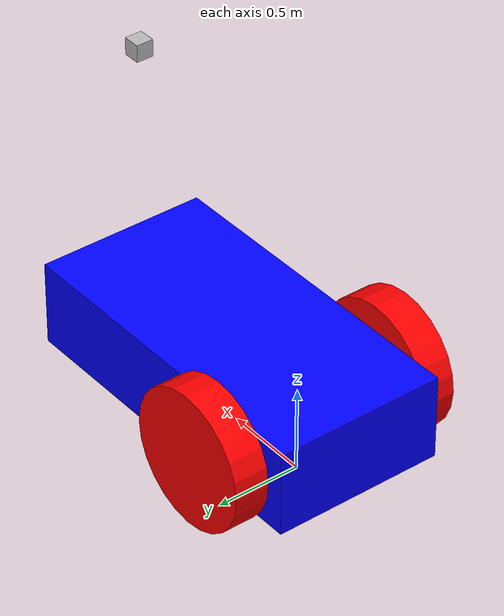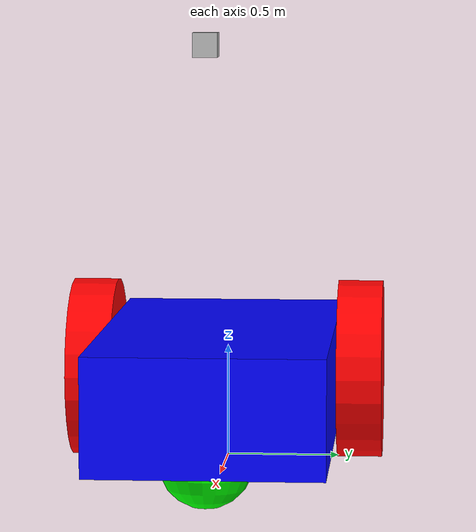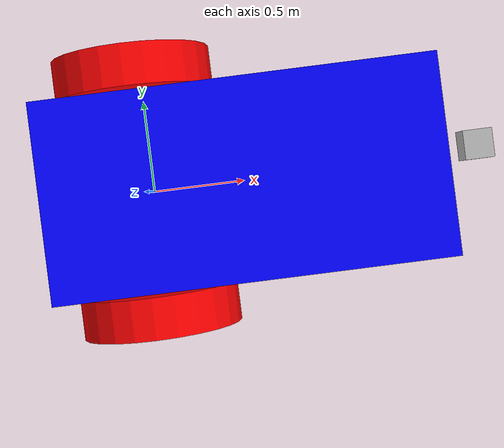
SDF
<?xml version="1.0" ?>
<sdf version="1.6">
  <model name="my_robot" canonical_link="chassis">

    <frame name="lidar_frame" attached_to="chassis">
      <pose>0 0 1 0 0 0</pose>
    </frame>

    <link name="chassis">
      <pose relative_to="__model__">0.5 0 0.4 0 0 0</pose>
      <inertial>
        <mass>1.14395</mass>
        <inertia>
          <ixx>0.126164</ixx>
          <ixy>0</ixy>
          <ixz>0</ixz>
          <iyy>0.416519</iyy>
          <iyz>0</iyz>
          <izz>0.481014</izz>
        </inertia>
      </inertial>
      <visual name="visual">
        <geometry>
          <box>
            <size>2.0 1.0 0.5</size>
          </box>
        </geometry>
        <material>
          <ambient>0.0 0.0 1.0 1</ambient>
          <diffuse>0.0 0.0 1.0 1</diffuse>
          <specular>0.0 0.0 1.0 1</specular>
        </material>
      </visual>
      <collision name="collision">
        <geometry>
          <box>
            <size>2.0 1.0 0.5</size>
          </box>
        </geometry>
      </collision>

    </link>
    <link name="cameras">
      <pose relative_to="chassis">0.8 0 1.5 0 0 0</pose>
      <inertial>
        <mass>0.1</mass>
        <inertia>
          <ixx>0.000166667</ixx>
          <ixy>0</ixy>
          <ixz>0</ixz>
          <iyy>0.000166667</iyy>
          <iyz>0</iyz>
          <izz>0.000166667</izz>
        </inertia>
      </inertial>
      <visual name="visual">
        <geometry>
          <box>
            <size>0.1 0.1 0.1</size>
          </box>
        </geometry>
      </visual>
      <collision name="collision">
        <geometry>
          <box>
            <size>0.01 0.01 0.01</size>
          </box>
        </geometry>
      </collision>
              <sensor name='camera' type='camera'>
          <camera>
            <horizontal_fov>1.0469999999999999</horizontal_fov>
            <image>
              <width>320</width>
              <height>240</height>
            </image>
            <clip>
              <near>0.10000000000000001</near>
              <far>100</far>
            </clip>
          </camera>
          <always_on>1</always_on>
          <update_rate>30</update_rate>
          <visualize>1</visualize>
          <topic>camera/image</topic>
        </sensor>
            <sensor name="thermal_camera_8bit" type="thermal">
  <camera>
    <horizontal_fov>1.047</horizontal_fov>
    <image>
      <width>320</width>
      <height>240</height>
      <format>L8</format>
    </image>
    <clip>
      <near>0.1</near>
      <far>100</far>
    </clip>
  </camera>
  <always_on>1</always_on>
  <update_rate>30</update_rate>
  <visualize>false</visualize>
  <topic>thermal_camera/image</topic>
  <plugin
    filename="ignition-gazebo-thermal-sensor-system"
    name="gz::sim::systems::ThermalSensor">
    <min_temp>253.15</min_temp>
    <max_temp>673.15</max_temp>
    <resolution>3.0</resolution>
  </plugin>
</sensor>
    </link>

    <link name="left_wheel">
      <pose relative_to="chassis">-0.5 0.6 0 -1.5707 0 0</pose>
      <inertial>
        <mass>2</mass>
        <inertia>
          <ixx>0.145833</ixx>
          <ixy>0</ixy>
          <ixz>0</ixz>
          <iyy>0.145833</iyy>
          <iyz>0</iyz>
          <izz>0.125</izz>
        </inertia>
      </inertial>
      <visual name="visual">
        <geometry>
          <cylinder>
            <radius>0.4</radius>
            <length>0.2</length>
          </cylinder>
        </geometry>
        <material>
          <ambient>1.0 0.0 0.0 1</ambient>
          <diffuse>1.0 0.0 0.0 1</diffuse>
          <specular>1.0 0.0 0.0 1</specular>
        </material>
      </visual>
      <collision name="collision">
        <geometry>
          <cylinder>
            <radius>0.4</radius>
            <length>0.2</length>
          </cylinder>
        </geometry>
      </collision>
    </link>

    <link name="right_wheel">
      <pose relative_to="chassis">-0.5 -0.6 0 -1.5707 0 0</pose>
      <inertial>
        <mass>1</mass>
        <inertia>
          <ixx>0.145833</ixx>
          <ixy>0</ixy>
          <ixz>0</ixz>
          <iyy>0.145833</iyy>
          <iyz>0</iyz>
          <izz>0.125</izz>
        </inertia>
      </inertial>
      <visual name="visual">
        <geometry>
          <cylinder>
            <radius>0.4</radius>
            <length>0.2</length>
          </cylinder>
        </geometry>
        <material>
          <ambient>1.0 0.0 0.0 1</ambient>
          <diffuse>1.0 0.0 0.0 1</diffuse>
          <specular>1.0 0.0 0.0 1</specular>
        </material>
      </visual>
      <collision name="collision">
        <geometry>
          <cylinder>
            <radius>0.4</radius>
            <length>0.2</length>
          </cylinder>
        </geometry>
      </collision>
    </link>

    <frame name="caster_frame" attached_to="chassis">
      <pose>0.8 0 -0.2 0 0 0</pose>
    </frame>

    <link name="caster">
      <pose relative_to="caster_frame"/>
      <inertial>
        <mass>1</mass>
        <inertia>
          <ixx>0.1</ixx>
          <ixy>0</ixy>
          <ixz>0</ixz>
          <iyy>0.1</iyy>
          <iyz>0</iyz>
          <izz>0.1</izz>
        </inertia>
      </inertial>
      <visual name="visual">
        <geometry>
          <sphere>
            <radius>0.2</radius>
          </sphere>
        </geometry>
        <material>
          <ambient>0.0 1 0.0 1</ambient>
          <diffuse>0.0 1 0.0 1</diffuse>
          <specular>0.0 1 0.0 1</specular>
        </material>
      </visual>
      <collision name="collision">
        <geometry>
          <sphere>
            <radius>0.2</radius>
          </sphere>
        </geometry>
      </collision>
    </link>

    <joint name="left_wheel_joint" type="revolute">
      <pose relative_to="left_wheel"/>
      <parent>chassis</parent>
      <child>left_wheel</child>
      <axis>
        <xyz expressed_in="__model__">0 1 0</xyz>
        <limit>
          <lower>-1.79769e+308</lower>
          <upper>1.79769e+308</upper>
        </limit>
      </axis>
    </joint>

    <joint name="right_wheel_joint" type="revolute">
      <pose relative_to="right_wheel"/>
      <parent>chassis</parent>
      <child>right_wheel</child>
      <axis>
        <xyz expressed_in="__model__">0 1 0</xyz>
        <limit>
          <lower>-1.79769e+308</lower>
          <upper>1.79769e+308</upper>
        </limit>
      </axis>
    </joint>

    <joint name="caster_wheel" type="ball">
      <parent>chassis</parent>
      <child>caster</child>
    </joint>

    <plugin
      filename="ignition-gazebo-diff-drive-system"
      name="ignition::gazebo::systems::DiffDrive">
      <left_joint>left_wheel_joint</left_joint>
      <right_joint>right_wheel_joint</right_joint>
      <wheel_separation>1.2</wheel_separation>
      <wheel_radius>0.4</wheel_radius>
      <odom_publish_frequency>50</odom_publish_frequency>
      <topic>cmd_vel</topic>
      <odom_topic>odom</odom_topic>
    </plugin>
  </model>
</sdf>
